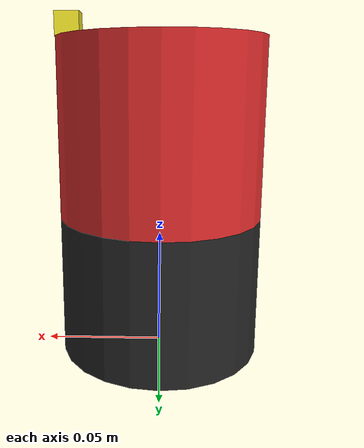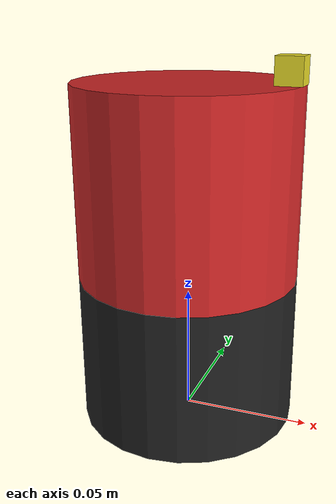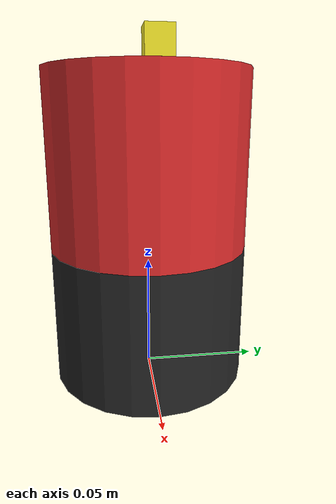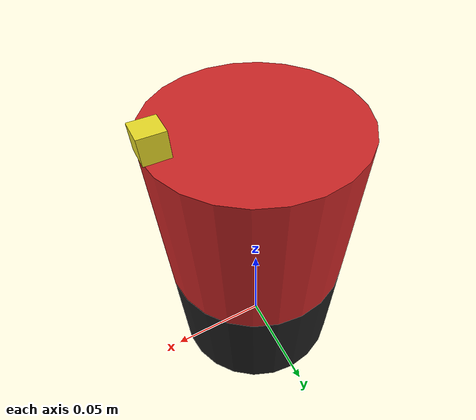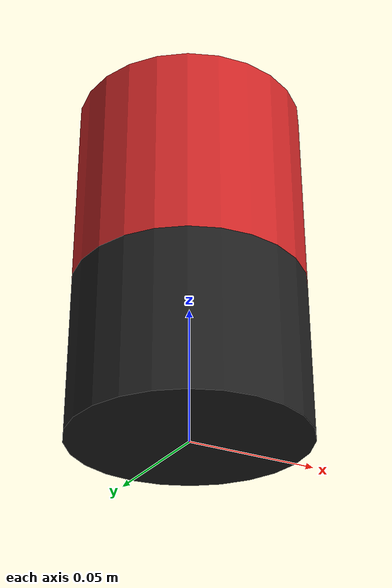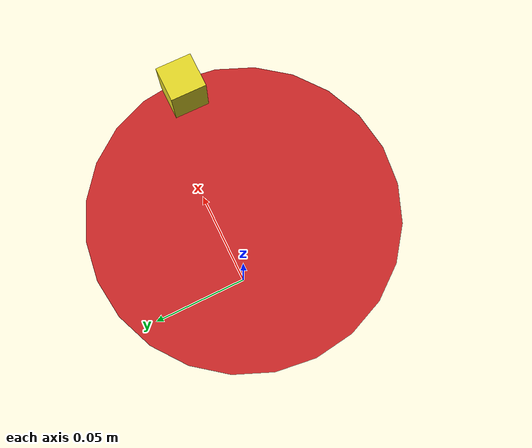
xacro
<?xml version="1.0"?>
<robot name="simple_robot"
       xmlns:xacro="http://www.ros.org/wiki/xacro">

  <xacro:property name="radius" value="0.04267" />
  <xacro:property name="top_length" value="0.07357" />
  <xacro:property name="base_length" value="0.05867" />
  <xacro:property name="pointer_size" value="0.01" />

  <link name="base">
    <inertial>
      <origin rpy="0.0 0.0 0.0" xyz="0.0 0.0 ${base_length/2}"/>
      <mass value="1.2"/>
      <inertia ixx="0.001087473" ixy="0.0" ixz="0.0" iyy="0.001087473" iyz="0.0" izz="0.001092437"/>
    </inertial>
    <visual name="base_visual">
      <origin rpy="0.0 0.0 0.0" xyz="0.0 0.0 ${base_length/2}"/>
      <geometry>
        <cylinder length="${base_length}" radius="${radius}"/>
      </geometry>
    </visual>
    <collision>
      <origin rpy="0.0 0.0 0.0" xyz="0.0 0.0 ${base_length/2}"/>
      <geometry>
        <cylinder length="${base_length}" radius="${radius}"/>
      </geometry>
    </collision>
  </link>

  <link name="top">
    <inertial>
      <origin rpy="0.0 0.0 0.0" xyz="0.0 0.0 ${top_length/2}"/>
      <mass value="0.1"/>
      <inertia ixx="0.000090623" ixy="0.0" ixz="0.0" iyy="0.000090623" iyz="0.0" izz="0.000091036"/>
    </inertial>
    <visual name="top_visual">
      <origin rpy="0.0 0.0 0.0" xyz="0.0 0.0 ${top_length/2}"/>
      <geometry>
        <cylinder length="${top_length}" radius="${radius}"/>
      </geometry>
    </visual>
    <collision>
      <origin rpy="0.0 0.0 0.0" xyz="0.0 0.0 ${top_length/2}"/>
      <geometry>
        <cylinder length="${top_length}" radius="${radius}"/>
      </geometry>
    </collision>
  </link>

  <link name="pointer">
    <inertial>
      <origin xyz="0.0 0.0 ${pointer_size/2}" rpy="0.0 0.0 0.0"/>
      <mass value="0.001"/>
      <inertia ixx="0.000000017" ixy="0.0" ixz="0.0" iyy="0.000000017" iyz="0.0" izz="0.000000017"/>
    </inertial>
    <visual name="pointer_visual">
      <origin xyz="0.0 0.0 0.0" rpy="0.0 0.0 0.0"/>
      <geometry>
        <box size="${pointer_size} ${pointer_size} ${pointer_size}"/>
      </geometry>
    </visual>
    <collision>
      <origin xyz="0.0 0.0 ${pointer_size/2}" rpy="0.0 0.0 0.0"/>
      <geometry>
        <box size="${pointer_size} ${pointer_size} ${pointer_size}"/>
      </geometry>
    </collision>
  </link>

  <joint name="joint" type="revolute">
    <origin rpy="0.0 0.0 0.0" xyz="0.0 0.0 ${base_length}"/>
    <parent link="base"/>
    <child link="top"/>
    <axis xyz="0.0 0.0 1.0"/>
    <limit effort="100.0" lower="-100000.0" upper="100000.0" velocity="10.0"/>
  </joint>

  <joint name="joint_pointer" type="fixed">
    <origin rpy="0.0 0.0 0.0" xyz="${radius-pointer_size/2} 0.0 ${top_length+pointer_size/2}"/>
    <parent link="top"/>
    <child link="pointer"/>
    <axis xyz="0.0 0.0 0.0"/>
  </joint>

  <transmission name="simple_transmission">
    <type>transmission_interface/SimpleTransmission</type>
    <joint name="joint">
      <hardwareInterface>hardware_interface/VelocityJointInterface</hardwareInterface>
    </joint>
    <actuator name="motor">
      <hardwareInterface>hardware_interface/VelocityJointInterface</hardwareInterface>
      <mechanicalReduction>1</mechanicalReduction>
    </actuator>
  </transmission>

  <gazebo reference="top">
    <material>Gazebo/Red</material>
  </gazebo>

  <gazebo reference="base">
    <material>Gazebo/Black</material>
  </gazebo>

  <gazebo reference="pointer">
    <material>Gazebo/Yellow</material>
  </gazebo>

  <gazebo>
    <plugin name="gazebo_ros_control" filename="libgazebo_ros_control.so">
      <robotNamespace>/simple_robot</robotNamespace>
      <controlPeriod>0.01</controlPeriod>
      <legacyModeNS>true</legacyModeNS>
    </plugin>
  </gazebo>

</robot>
